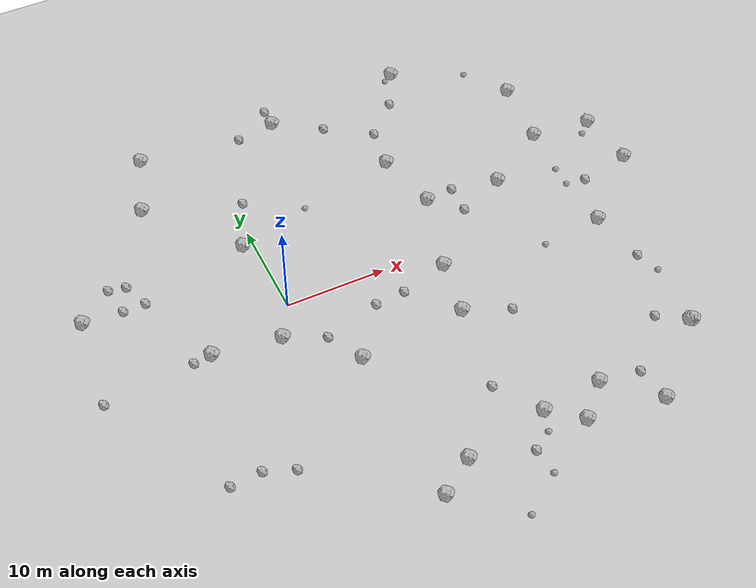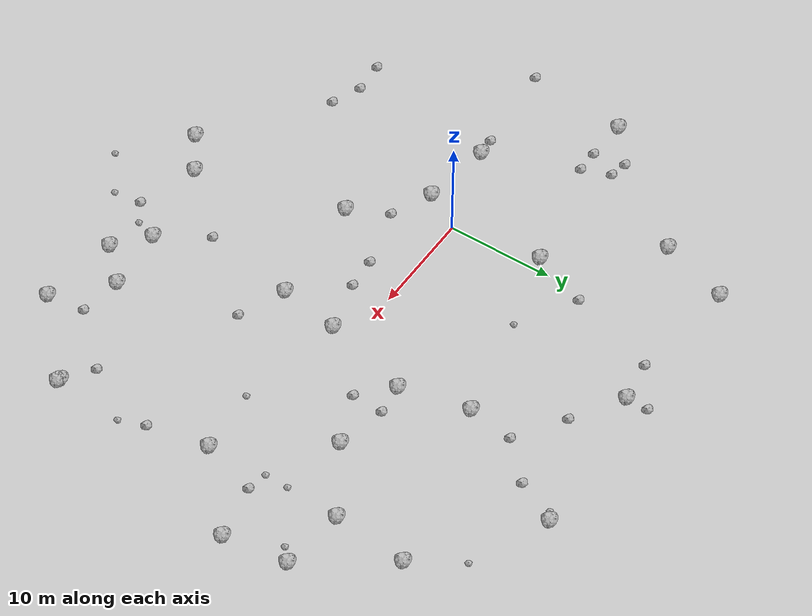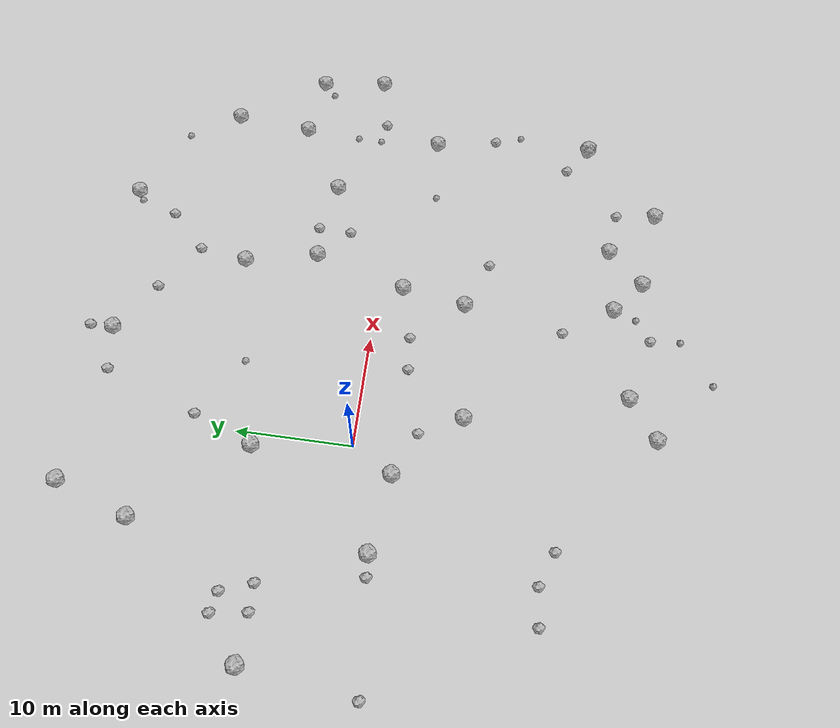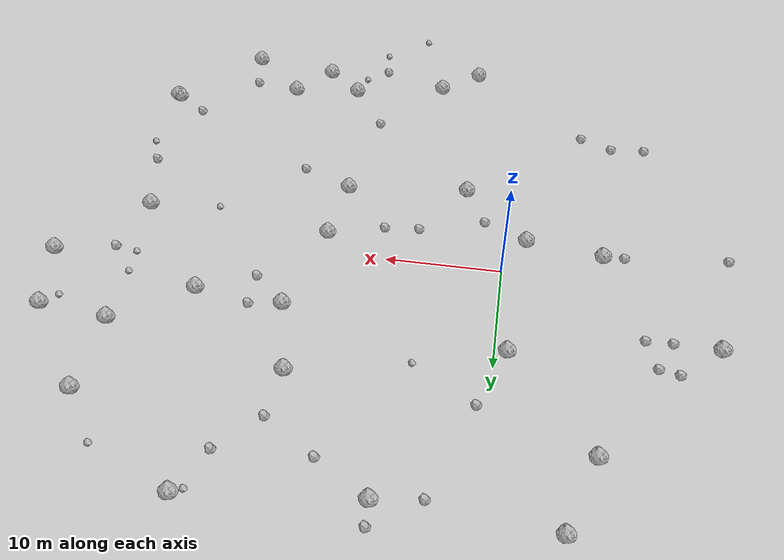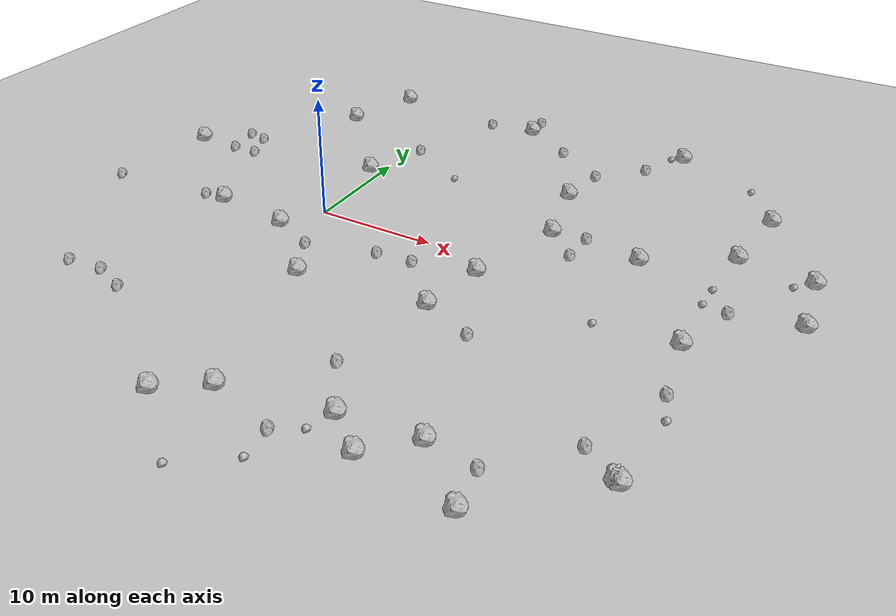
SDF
<sdf version="1.6">
 <world name="default">
  <include><uri>model://custom_ground</uri></include>
  <include><uri>model://sun</uri></include>
  <model name="rock1_0_0">
   <include><uri>model://rock1</uri><pose>-6.136145947086405 23.548551806514133 0.5 0 0 0</pose></include>
  </model>
  <model name="rock1_0_1">
   <include><uri>model://rock1</uri><pose>26.311944511000796 -24.568540345085353 0.5 0 0 0</pose></include>
  </model>
  <model name="rock1_0_2">
   <include><uri>model://rock1</uri><pose>16.38472202316631 12.576833294972353 0.5 0 0 0</pose></include>
  </model>
  <model name="rock1_0_3">
   <include><uri>model://rock1</uri><pose>38.666671567406276 2.8859533389507277 0.5 0 0 0</pose></include>
  </model>
  <model name="rock1_0_4">
   <include><uri>model://rock1</uri><pose>14.48638362061807 -7.828021500809157 0.5 0 0 0</pose></include>
  </model>
  <model name="rock1_0_5">
   <include><uri>model://rock1</uri><pose>33.33442109412706 -18.09072243469169 0.5 0 0 0</pose></include>
  </model>
  <model name="rock1_0_6">
   <include><uri>model://rock1</uri><pose>-1.9257686582272484 -3.496941082281456 0.5 0 0 0</pose></include>
  </model>
  <model name="rock1_0_7">
   <include><uri>model://rock1</uri><pose>33.09460581212923 -17.99134010054423 0.5 0 0 0</pose></include>
  </model>
  <model name="rock1_0_8">
   <include><uri>model://rock1</uri><pose>7.4339800176624244 -22.608763867974567 0.5 0 0 0</pose></include>
  </model>
  <model name="rock1_0_9">
   <include><uri>model://rock1</uri><pose>15.44225910371128 -2.1399400903058137 0.5 0 0 0</pose></include>
  </model>
  <model name="rock1_0_10">
   <include><uri>model://rock1</uri><pose>8.037951693655753 22.768845974844623 0.5 0 0 0</pose></include>
  </model>
  <model name="rock1_0_11">
   <include><uri>model://rock1</uri><pose>-8.31565590357891 17.06055437844438 0.5 0 0 0</pose></include>
  </model>
  <model name="rock1_0_12">
   <include><uri>model://rock1</uri><pose>25.416227691091024 5.460396539424494 0.5 0 0 0</pose></include>
  </model>
  <model name="rock1_0_13">
   <include><uri>model://rock1</uri><pose>37.87958856216269 8.826659557855578 0.5 0 0 0</pose></include>
  </model>
  <model name="rock1_0_14">
   <include><uri>model://rock1</uri><pose>31.879508436571193 9.541084042498241 0.5 0 0 0</pose></include>
  </model>
  <model name="rock1_0_15">
   <include><uri>model://rock1</uri><pose>3.7547350243116924 -8.835048656869073 0.5 0 0 0</pose></include>
  </model>
  <model name="rock1_0_16">
   <include><uri>model://rock1</uri><pose>-1.020090760966795 8.423693279525082 0.5 0 0 0</pose></include>
  </model>
  <model name="rock1_0_17">
   <include><uri>model://rock1</uri><pose>4.000677360774738 -25.021590065186 0.5 0 0 0</pose></include>
  </model>
  <model name="rock1_0_18">
   <include><uri>model://rock1</uri><pose>31.86253146034342 -3.387310298215695 0.5 0 0 0</pose></include>
  </model>
  <model name="rock1_0_19">
   <include><uri>model://rock1</uri><pose>-8.566617958500917 -2.5591445728881403 0.5 0 0 0</pose></include>
  </model>
  <model name="rock1_0_20">
   <include><uri>model://rock1</uri><pose>17.84063832433683 6.132385539091061 0.5 0 0 0</pose></include>
  </model>
  <model name="rock1_0_21">
   <include><uri>model://rock1</uri><pose>-18.08846239760467 5.996686269308597 0.5 0 0 0</pose></include>
  </model>
  <model name="rock1_0_22">
   <include><uri>model://rock1</uri><pose>22.48135426009425 24.186851182370738 0.5 0 0 0</pose></include>
  </model>
  <model name="rock1_0_23">
   <include><uri>model://rock1</uri><pose>32.5552385660743 16.52535043493029 0.5 0 0 0</pose></include>
  </model>
  <model name="rock1_0_24">
   <include><uri>model://rock1</uri><pose>18.792504933756966 -23.532087552940546 0.5 0 0 0</pose></include>
  </model>
  <model name="rock1_0_25">
   <include><uri>model://rock1</uri><pose>21.840801147512558 -20.445981498420522 0.5 0 0 0</pose></include>
  </model>
  <model name="rock1_0_26">
   <include><uri>model://rock1</uri><pose>15.783993682109802 -21.0559747383871 0.5 0 0 0</pose></include>
  </model>
  <model name="rock2_0_0">
   <include><uri>model://rock2</uri><pose>20.35867433910009 20.263287933654496 0.3 0 0 0</pose></include>
  </model>
  <model name="rock2_0_1">
   <include><uri>model://rock2</uri><pose>-6.420057476337027 -17.18356675004751 0.3 0 0 0</pose></include>
  </model>
  <model name="rock2_0_2">
   <include><uri>model://rock2</uri><pose>-19.292497370783018 -3.532705289228563 0.3 0 0 0</pose></include>
  </model>
  <model name="rock2_0_3">
   <include><uri>model://rock2</uri><pose>-14.700126244412955 8.82761470885361 0.3 0 0 0</pose></include>
  </model>
  <model name="rock2_0_4">
   <include><uri>model://rock2</uri><pose>10.533150984032364 -3.394761915025896 0.3 0 0 0</pose></include>
  </model>
  <model name="rock2_0_5">
   <include><uri>model://rock2</uri><pose>13.091651141031264 -24.363454358710975 0.3 0 0 0</pose></include>
  </model>
  <model name="rock2_0_6">
   <include><uri>model://rock2</uri><pose>32.878114607984216 -9.02727493864117 0.3 0 0 0</pose></include>
  </model>
  <model name="rock2_0_7">
   <include><uri>model://rock2</uri><pose>4.024547663177302 22.19025801449986 0.3 0 0 0</pose></include>
  </model>
  <model name="rock2_0_8">
   <include><uri>model://rock2</uri><pose>1.8354044830788183 -5.222071459125949 0.3 0 0 0</pose></include>
  </model>
  <model name="rock2_0_9">
   <include><uri>model://rock2</uri><pose>33.44732824001764 1.8724094145796002 0.3 0 0 0</pose></include>
  </model>
  <model name="rock2_0_10">
   <include><uri>model://rock2</uri><pose>20.548957340935722 3.492749802138434 0.3 0 0 0</pose></include>
  </model>
  <model name="rock2_0_11">
   <include><uri>model://rock2</uri><pose>25.777438092008524 -21.017981441717367 0.3 0 0 0</pose></include>
  </model>
  <model name="rock2_0_12">
   <include><uri>model://rock2</uri><pose>12.557330759260708 19.87984767035519 0.3 0 0 0</pose></include>
  </model>
  <model name="rock2_0_13">
   <include><uri>model://rock2</uri><pose>12.843293731347394 -16.67156156949233 0.3 0 0 0</pose></include>
  </model>
  <model name="rock2_0_14">
   <include><uri>model://rock2</uri><pose>20.655295430506598 6.476425373296252 0.3 0 0 0</pose></include>
  </model>
  <model name="rock2_0_15">
   <include><uri>model://rock2</uri><pose>-10.41793856014737 -2.696792015451699 0.3 0 0 0</pose></include>
  </model>
  <model name="rock2_0_16">
   <include><uri>model://rock2</uri><pose>30.372396845301076 -16.13574356893094 0.3 0 0 0</pose></include>
  </model>
  <model name="rock2_0_17">
   <include><uri>model://rock2</uri><pose>-13.007291033218362 8.48684860564304 0.3 0 0 0</pose></include>
  </model>
  <model name="rock2_0_18">
   <include><uri>model://rock2</uri><pose>-9.238334292893587 -16.060435108954564 0.3 0 0 0</pose></include>
  </model>
  <model name="rock2_0_19">
   <include><uri>model://rock2</uri><pose>-14.2431115458143 5.822612355498677 0.3 0 0 0</pose></include>
  </model>
  <model name="rock2_0_20">
   <include><uri>model://rock2</uri><pose>-12.305396868071254 -16.285127670697605 0.3 0 0 0</pose></include>
  </model>
  <model name="rock2_0_21">
   <include><uri>model://rock2</uri><pose>7.503005636352473 -3.639186216291506 0.3 0 0 0</pose></include>
  </model>
  <model name="rock2_0_22">
   <include><uri>model://rock2</uri><pose>7.975739896341384 24.860645729933744 0.3 0 0 0</pose></include>
  </model>
  <model name="rock2_0_23">
   <include><uri>model://rock2</uri><pose>16.98425976276286 16.927109195832152 0.3 0 0 0</pose></include>
  </model>
  <model name="rock2_0_24">
   <include><uri>model://rock2</uri><pose>1.0134711796510132 13.749703670968657 0.3 0 0 0</pose></include>
  </model>
  <model name="rock2_0_25">
   <include><uri>model://rock2</uri><pose>18.800286800258142 -9.660134297727666 0.3 0 0 0</pose></include>
  </model>
  <model name="rock2_0_26">
   <include><uri>model://rock2</uri><pose>-12.02107869696659 5.846855038706003 0.3 0 0 0</pose></include>
  </model>
  <model name="rock3_0_0">
   <include><uri>model://rock3</uri><pose>6.373886180208121 10.474063631431669 0.2 0 0 0</pose></include>
  </model>
  <model name="rock3_0_1">
   <include><uri>model://rock3</uri><pose>29.57362587714436 20.952420956619605 0.2 0 0 0</pose></include>
  </model>
  <model name="rock3_0_2">
   <include><uri>model://rock3</uri><pose>25.57471965138661 -3.9990422012507807 0.2 0 0 0</pose></include>
  </model>
  <model name="rock3_0_3">
   <include><uri>model://rock3</uri><pose>21.48349477456661 23.646266558348884 0.2 0 0 0</pose></include>
  </model>
  <model name="rock3_0_4">
   <include><uri>model://rock3</uri><pose>36.54391465055342 7.670747703489916 0.2 0 0 0</pose></include>
  </model>
  <model name="rock3_0_5">
   <include><uri>model://rock3</uri><pose>13.360471180800545 -27.046272833278444 0.2 0 0 0</pose></include>
  </model>
  <model name="rock3_0_6">
   <include><uri>model://rock3</uri><pose>15.02384519389507 -23.12701856196893 0.2 0 0 0</pose></include>
  </model>
  <model name="rock3_0_7">
   <include><uri>model://rock3</uri><pose>9.588277662315644 -29.83701791645252 0.2 0 0 0</pose></include>
  </model>
  <model name="rock3_0_8">
   <include><uri>model://rock3</uri><pose>31.509807388814025 4.394522941775804 0.2 0 0 0</pose></include>
  </model>
  <model name="rock3_0_9">
   <include><uri>model://rock3</uri><pose>33.69590301759455 -11.474569204893083 0.2 0 0 0</pose></include>
  </model>
  <model name="rock3_0_10">
   <include><uri>model://rock3</uri><pose>31.46719693794693 2.1550060541926896 0.2 0 0 0</pose></include>
  </model>
 </world>
</sdf>
